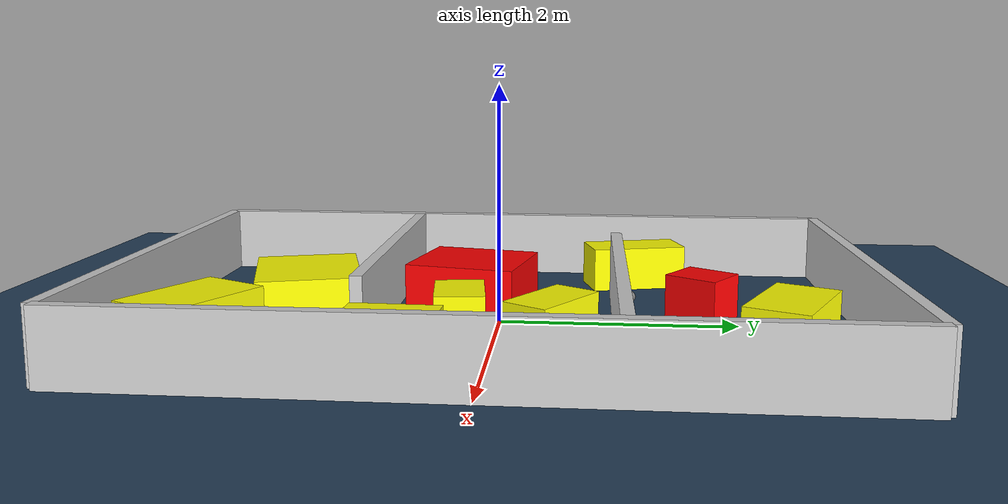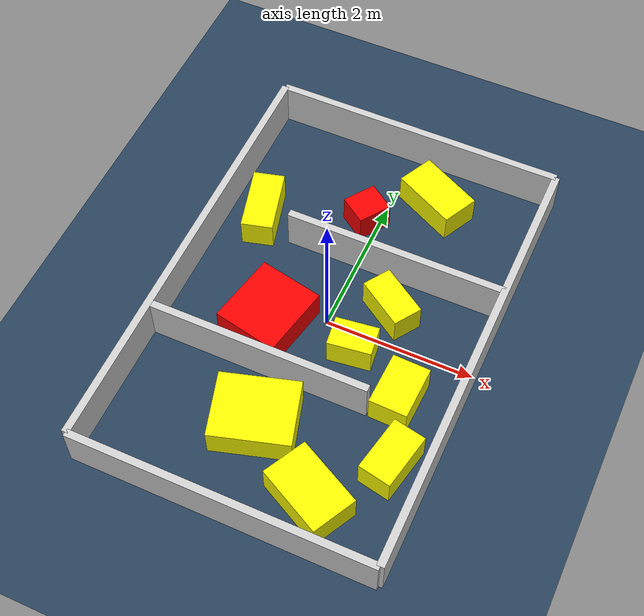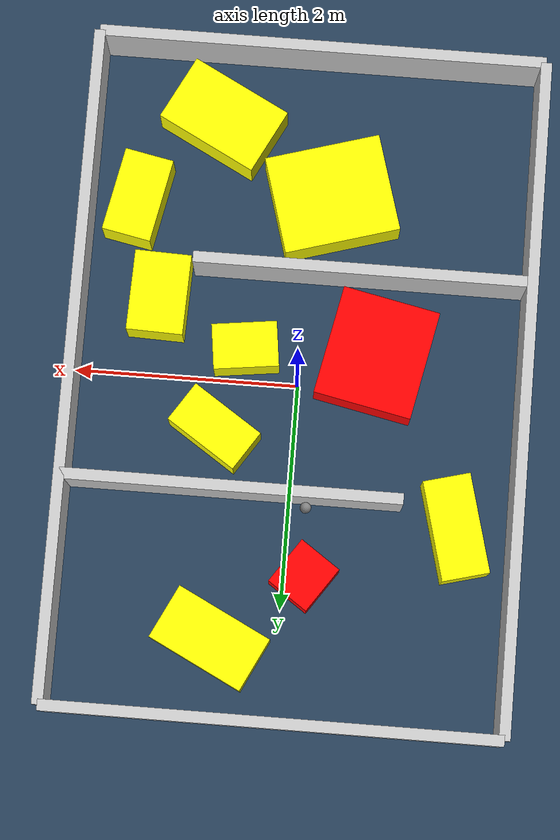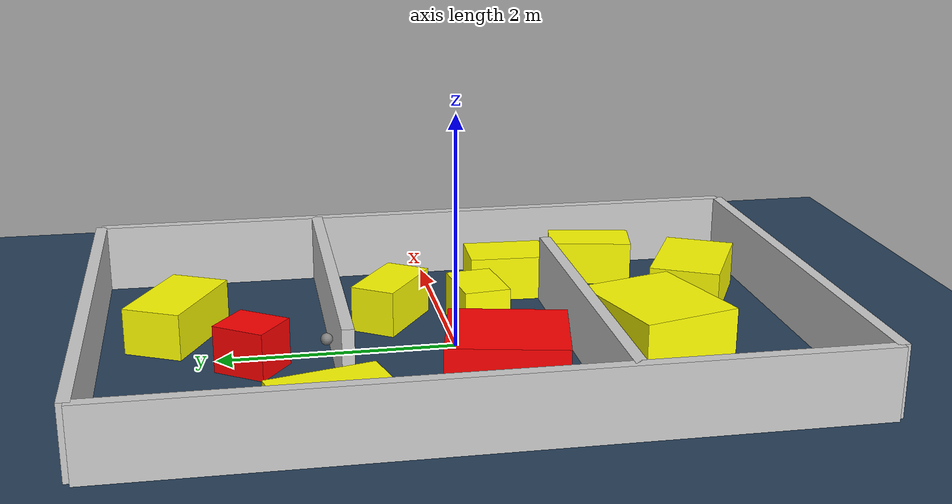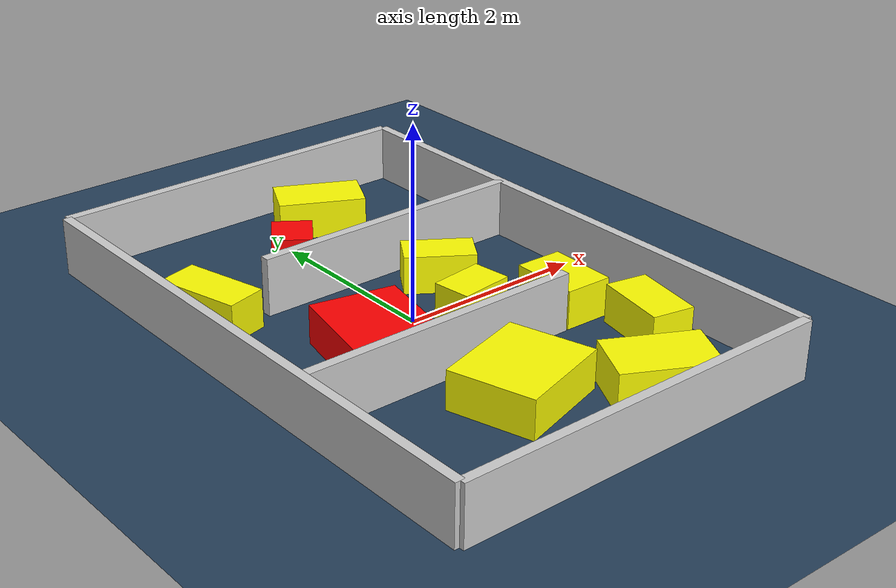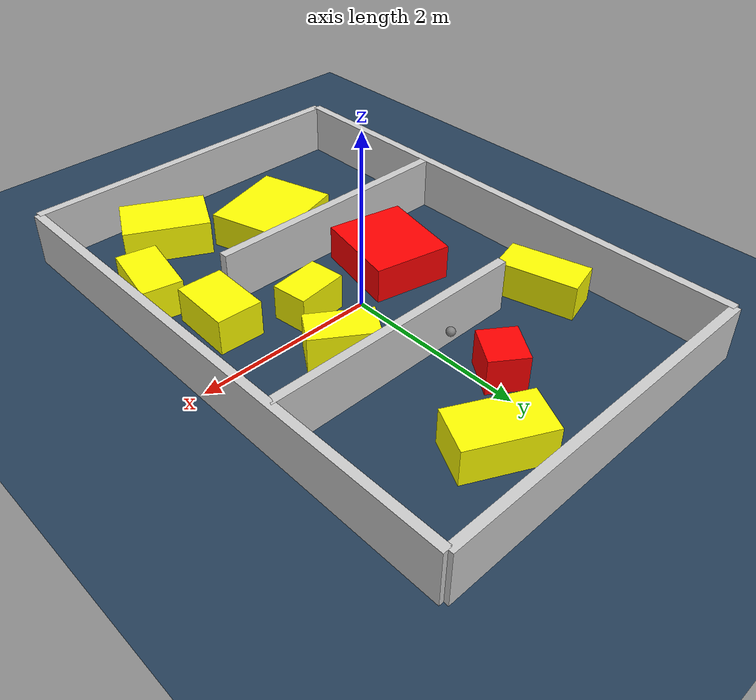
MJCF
<?xml version="1.0" ?>
<mujoco model="generated_environment">
  <option timestep="0.01" integrator="RK4" cone="elliptic"/>
  <default>
    <geom density="1"/>
  </default>
  <asset>
    <texture builtin="gradient" height="3072" rgb1="0.3 0.5 0.7" rgb2="0 0 0" type="skybox" width="512"/>
    <texture builtin="checker" height="300" mark="edge" markrgb="0.8 0.8 0.8" name="groundplane" rgb1="0.2 0.3 0.4" rgb2="0.1 0.2 0.3" type="2d" width="300"/>
    <material name="groundplane" reflectance="0.2" texrepeat="5 5" texture="groundplane" texuniform="true"/>
    <material name="robot" rgba="0.0 1.0 0.0 1"/>
  </asset>
  <worldbody>
    <light dir="0 0 -1" directional="true" pos="0 0 1.5"/>
    <geom condim="4" friction="1.0 0.005 0.001" material="groundplane" name="floor" size="0 0 0.05" type="plane"/>
    <body name="walls">
      <geom name="wall_1" condim="4" pos="-2.0 0.0 0.3" rgba="0.800000011920929 0.800000011920929 0.800000011920929 1.0" size="0.05 3.0 0.3" type="box"/>
      <geom name="wall_2" condim="4" pos="2.0 0.0 0.3" rgba="0.800000011920929 0.800000011920929 0.800000011920929 1.0" size="0.05 3.0 0.3" type="box"/>
      <geom name="wall_3" condim="4" pos="0.0 -3.0 0.3" rgba="0.800000011920929 0.800000011920929 0.800000011920929 1.0" size="2.0 0.05 0.3" type="box"/>
      <geom name="wall_4" condim="4" pos="0.0 3.0 0.3" rgba="0.800000011920929 0.800000011920929 0.800000011920929 1.0" size="2.0 0.05 0.3" type="box"/>
      <geom name="wall_5" condim="4" pos="-0.5 -1.0 0.3" rgba="0.800000011920929 0.800000011920929 0.800000011920929 1.0" size="1.5 0.05 0.3" type="box"/>
      <geom name="wall_6" condim="4" pos="0.5 1.0 0.3" rgba="0.800000011920929 0.800000011920929 0.800000011920929 1.0" size="1.5 0.05 0.3" type="box"/>
    </body>
    <body name="robot">
      <joint name="joint_x" type="slide" pos="0 0 0" axis="1 0 0"/>
      <joint name="joint_y" type="slide" pos="0 0 0" axis="0 1 0"/>
      <geom name="robot" type="sphere" pos="-0.15768083469331096 1.0997193405660415 0.2" size="0.05" mass="5." friction="1.0 0.005 0.0001" condim="4"/>
      <site name="sensor_ball"/>
    </body>
    <body name="obstacle_1_movable">
      <geom name="obstacle_1_movable" condim="4" pos="0.5862020510035821 2.3138464323872427 0.2" euler="0 0 153.48045952342403" friction="1.0 0.005 0.001" rgba="1 1 0 1" size="0.45771267384486486 0.25867707237318804 0.2" type="box" mass="0.1"/>
      <joint type="free"/>
    </body>
    <body name="obstacle_2_static">
      <geom name="obstacle_2_static" condim="4" pos="-0.6829576670513876 -0.3015677648105952 0.2" euler="0 0 168.30360558237524" friction="1.0 0.005 0.001" rgba="1 0 0 1" size="0.441947431496409 0.4928453480124002 0.2" type="box"/>
    </body>
    <body name="obstacle_3_movable">
      <geom name="obstacle_3_movable" condim="4" pos="1.5491800248707648 -1.5651245641790006 0.2" euler="0 0 78.70543788927175" friction="1.0 0.005 0.001" rgba="1 1 0 1" size="0.3811470150634272 0.22198058249529598 0.2" type="box" mass="0.1"/>
      <joint type="free"/>
    </body>
    <body name="obstacle_4_movable">
      <geom name="obstacle_4_movable" condim="4" pos="0.8423779364106316 -2.3612341245963733 0.2" euler="0 0 152.66474954818972" friction="1.0 0.005 0.001" rgba="1 1 0 1" size="0.48187045480226587 0.31170795321302536 0.2" type="box" mass="0.1"/>
      <joint type="free"/>
    </body>
    <body name="obstacle_5_movable">
      <geom name="obstacle_5_movable" condim="4" pos="0.4831825722860257 -0.27972295978469264 0.2" euler="0 0 7.219216403124271" friction="1.0 0.005 0.001" rgba="1 1 0 1" size="0.2899554592696905 0.202626212573567 0.2" type="box" mass="0.1"/>
      <joint type="free"/>
    </body>
    <body name="obstacle_6_movable">
      <geom name="obstacle_6_movable" condim="4" pos="1.2857916775603342 -0.6956597255245887 0.2" euler="0 0 178.16290684717163" friction="1.0 0.005 0.001" rgba="1 1 0 1" size="0.2519772586922211 0.3606384434262213 0.2" type="box" mass="0.1"/>
      <joint type="free"/>
    </body>
    <body name="obstacle_7_static">
      <geom name="obstacle_7_static" condim="4" pos="-0.18860637131783697 1.7080783792984304 0.2" euler="0 0 235.29071001377835" friction="1.0 0.005 0.001" rgba="1 0 0 1" size="0.23190829338208171 0.20948921028083195 0.2" type="box"/>
    </body>
    <body name="obstacle_8_movable">
      <geom name="obstacle_8_movable" condim="4" pos="0.6971349590192102 0.46245931428880116 0.2" euler="0 0 326.5264357975328" friction="1.0 0.005 0.001" rgba="1 1 0 1" size="0.36207886817983387 0.2002801059833947 0.2" type="box" mass="0.1"/>
      <joint type="free"/>
    </body>
    <body name="obstacle_9_movable">
      <geom name="obstacle_9_movable" condim="4" pos="-0.18326636453352396 -1.7068330152516025 0.2" euler="0 0 16.40082253169288" friction="1.0 0.005 0.001" rgba="1 1 0 1" size="0.5225206751921074 0.4418290212905653 0.2" type="box" mass="0.1"/>
      <joint type="free"/>
    </body>
    <body name="obstacle_10_movable">
      <geom name="obstacle_10_movable" condim="4" pos="-1.4823379507866796 1.1866143491698176 0.2" euler="0 0 104.78880088139124" friction="1.0 0.005 0.001" rgba="1 1 0 1" size="0.4461641663116894 0.21300399252982138 0.2" type="box" mass="0.1"/>
      <joint type="free"/>
    </body>
  </worldbody>
  <actuator>
    <motor name="actuator_x" joint="joint_x" gear="1" ctrlrange="-1 1"/>
    <motor name="actuator_y" joint="joint_y" gear="1" ctrlrange="-1 1"/>
  </actuator>
</mujoco>
